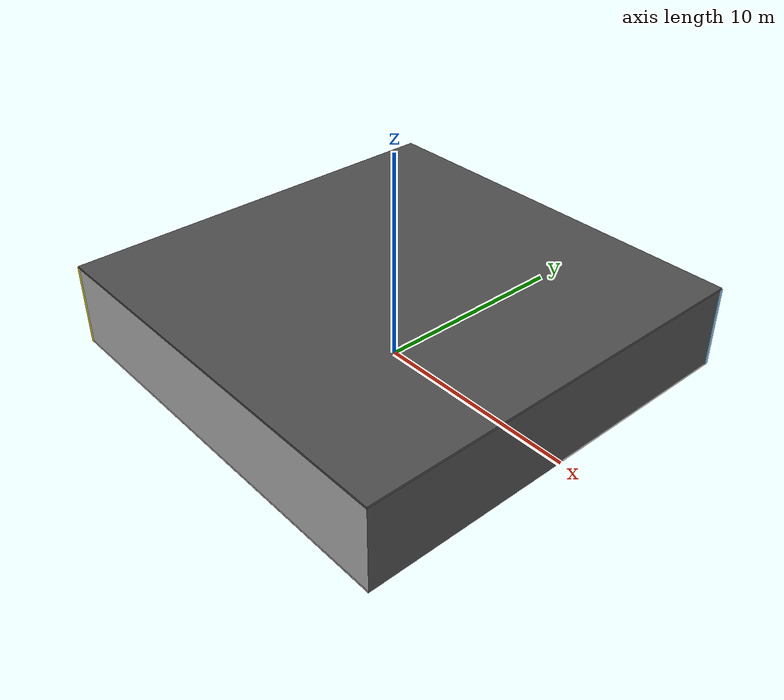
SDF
<sdf version="1.4">
 <world name="default">
  <physics type="ode">
   <max_step_size>0.001</max_step_size>
   <real_time_factor>1</real_time_factor>
   <real_time_update_rate>1000</real_time_update_rate>
   <gravity>0 0 -9.8</gravity>
  </physics>
  <scene><ambient>0.4 0.4 0.4 1</ambient><background>0.7 0.7 0.7 1</background><shadows>1</shadows></scene>
  <model name="Surrounding">
   <static>1</static>
   <link name="Ceiling">
    <collision name="Ceiling_Collision"><geometry><box><size>20 20 0.1</size></box></geometry></collision>
    <visual name="Ceiling_Visual">
     <geometry><box><size>20 20 0.1</size></box></geometry>
     <material>
      <script><uri>file://media/materials/scripts/gazebo.material</uri><name>Gazebo/DarkGrey</name></script>
     </material>
    </visual>
    <pose>0 0 4.05 0 0 0</pose>
   </link>
   <link name="Wall_South">
    <collision name="Wall_South_Collision">
     <geometry><box><size>20 0 4</size></box></geometry>
     <pose>0 0 2 0 -0 0</pose>
    </collision>
    <visual name="Wall_South_Visual">
     <pose>0 0 2 0 -0 0</pose>
     <geometry><box><size>20 0 4</size></box></geometry>
     <material>
      <script><uri>file://media/materials/scripts/gazebo.material</uri><name>Gazebo/LightOn</name></script>
     </material>
    </visual>
    <velocity_decay><linear>0</linear><angular>0</angular></velocity_decay>
    <pose>0 -10 0 0 -0 0</pose>
   </link>
   <link name="Wall_East">
    <collision name="Wall_21_Collision">
     <geometry><box><size>20 0 4</size></box></geometry>
     <pose>0 0 2 0 -0 0</pose>
    </collision>
    <visual name="Wall_21_Visual">
     <pose>0 0 2 0 -0 0</pose>
     <geometry><box><size>20 0 4</size></box></geometry>
     <material>
      <script><uri>file://media/materials/scripts/gazebo.material</uri><name>Gazebo/DarkGrey</name></script>
     </material>
    </visual>
    <velocity_decay><linear>0</linear><angular>0</angular></velocity_decay>
    <pose>10 0 0 0 -0 1.5708</pose>
   </link>
   <link name="Wall_North">
    <collision name="Wall_22_Collision">
     <geometry><box><size>20 0.2 4</size></box></geometry>
     <pose>0 0 2 0 -0 0</pose>
    </collision>
    <visual name="Wall_22_Visual">
     <pose>0 0 2 0 -0 0</pose>
     <geometry><box><size>20 0.2 4</size></box></geometry>
     <material>
      <script><uri>file://media/materials/scripts/gazebo.material</uri><name>Gazebo/SkyBlue</name></script>
     </material>
    </visual>
    <velocity_decay><linear>0</linear><angular>0</angular></velocity_decay>
    <pose>0 10 0 0 -0 0</pose>
   </link>
   <link name="Wall_West">
    <collision name="Wall_23_Collision">
     <geometry><box><size>20 0.2 4</size></box></geometry>
     <pose>0 0 2 0 -0 0</pose>
    </collision>
    <visual name="Wall_23_Visual">
     <pose>0 0 2 0 -0 0</pose>
     <geometry><box><size>20 0.2 4</size></box></geometry>
     <material>
      <script><uri>file://media/materials/scripts/gazebo.material</uri><name>Gazebo/YellowGlow</name></script>
     </material>
    </visual>
    <velocity_decay><linear>0</linear><angular>0</angular></velocity_decay>
    <pose>-10 0 0 0 0 -1.5708</pose>
   </link>
   <link name="Ground_link">
    <collision name="collision">
     <pose>0 0 .05 0 -0 0</pose>
     <geometry><box><size>20 20 0.1</size></box></geometry>
    </collision>
    <visual name="visual">
     <pose>0 0 .05 0 -0 0</pose>
     <geometry><box><size>20 20 0.1</size></box></geometry>
     <material>
      <script><uri>file://media/materials/scripts/gazebo.material</uri><name>Gazebo/CeilingTiled</name></script>
     </material>
    </visual>
   </link>
   <static>1</static>
  </model>
  <spherical_coordinates>
   <surface_model>EARTH_WGS84</surface_model>
   <latitude_deg>0</latitude_deg>
   <longitude_deg>0</longitude_deg>
   <elevation>0</elevation>
   <heading_deg>0</heading_deg>
  </spherical_coordinates>
  <light name="lightball_0" type="diffuse">
   <diffuse>0.8 0.8 0.8 1</diffuse>
   <specular>0.2 0.2 0.2 1</specular>
   <attenuation>
    <range>100</range>
    <constant>0.7</constant>
    <linear>0.01</linear>
    <quadratic>0.001</quadratic>
   </attenuation>
   <direction>-0.5 0.1 -0.9</direction>
   <pose>-2.60769463898 -9.64511510237 0.700158385113 0 0 0</pose>
  </light>
  <light name="lightball_1" type="diffuse">
   <diffuse>0.8 0.8 0.8 1</diffuse>
   <specular>0.2 0.2 0.2 1</specular>
   <attenuation>
    <range>100</range>
    <constant>0.7</constant>
    <linear>0.01</linear>
    <quadratic>0.001</quadratic>
   </attenuation>
   <direction>-0.5 0.1 -0.9</direction>
   <pose>-9.6182779764 3.36690488164 2.84808362546 0 0 0</pose>
  </light>
  <light name="lightball_2" type="diffuse">
   <diffuse>0.8 0.8 0.8 1</diffuse>
   <specular>0.2 0.2 0.2 1</specular>
   <attenuation>
    <range>100</range>
    <constant>0.7</constant>
    <linear>0.01</linear>
    <quadratic>0.001</quadratic>
   </attenuation>
   <direction>-0.5 0.1 -0.9</direction>
   <pose>-3.57571259978 -8.70105712509 2.69763519905 0 0 0</pose>
  </light>
  <light name="lightball_3" type="diffuse">
   <diffuse>0.8 0.8 0.8 1</diffuse>
   <specular>0.2 0.2 0.2 1</specular>
   <attenuation>
    <range>100</range>
    <constant>0.7</constant>
    <linear>0.01</linear>
    <quadratic>0.001</quadratic>
   </attenuation>
   <direction>-0.5 0.1 -0.9</direction>
   <pose>3.73933865183 5.46022493635 2.85002330605 0 0 0</pose>
  </light>
  <light name="lightball_4" type="diffuse">
   <diffuse>0.8 0.8 0.8 1</diffuse>
   <specular>0.2 0.2 0.2 1</specular>
   <attenuation>
    <range>100</range>
    <constant>0.7</constant>
    <linear>0.01</linear>
    <quadratic>0.001</quadratic>
   </attenuation>
   <direction>-0.5 0.1 -0.9</direction>
   <pose>-6.2343357827 4.05724083347 0.937889483803 0 0 0</pose>
  </light>
  <light name="lightball_5" type="diffuse">
   <diffuse>0.8 0.8 0.8 1</diffuse>
   <specular>0.2 0.2 0.2 1</specular>
   <attenuation>
    <range>100</range>
    <constant>0.7</constant>
    <linear>0.01</linear>
    <quadratic>0.001</quadratic>
   </attenuation>
   <direction>-0.5 0.1 -0.9</direction>
   <pose>5.88467293127 -2.55452646833 2.02673118454 0 0 0</pose>
  </light>
  <light name="lightball_6" type="diffuse">
   <diffuse>0.8 0.8 0.8 1</diffuse>
   <specular>0.2 0.2 0.2 1</specular>
   <attenuation>
    <range>100</range>
    <constant>0.7</constant>
    <linear>0.01</linear>
    <quadratic>0.001</quadratic>
   </attenuation>
   <direction>-0.5 0.1 -0.9</direction>
   <pose>8.86575882131 -4.43083515924 2.62839500231 0 0 0</pose>
  </light>
  <light name="lightball_7" type="diffuse">
   <diffuse>0.8 0.8 0.8 1</diffuse>
   <specular>0.2 0.2 0.2 1</specular>
   <attenuation>
    <range>100</range>
    <constant>0.7</constant>
    <linear>0.01</linear>
    <quadratic>0.001</quadratic>
   </attenuation>
   <direction>-0.5 0.1 -0.9</direction>
   <pose>-4.60653142273 -8.09288346201 3.14403303363 0 0 0</pose>
  </light>
  <light name="lightball_8" type="diffuse">
   <diffuse>0.8 0.8 0.8 1</diffuse>
   <specular>0.2 0.2 0.2 1</specular>
   <attenuation>
    <range>100</range>
    <constant>0.7</constant>
    <linear>0.01</linear>
    <quadratic>0.001</quadratic>
   </attenuation>
   <direction>-0.5 0.1 -0.9</direction>
   <pose>-2.4558263649 9.40055569852 1.44984207827 0 0 0</pose>
  </light>
  <include>
   <uri>model://robocup_3Dsim_goal</uri>
   <pose>-4.19836738223 -0.613652742411 0 0 0 2.95631674794</pose>
  </include>
  <include>
   <uri>model://robocup_3Dsim_goal</uri>
   <pose>-5.34098508649 6.42515978481 0 0 0 2.84814759425</pose>
  </include>
  <include><uri>model://cabinet</uri><pose>-1.32621225562 4.6042621196 0 0 0 1.06282293476</pose></include>
  <include>
   <uri>model://textured_shapes</uri>
   <pose>-1.67333068174 7.74989403773 0 0 0 1.40968099939</pose>
  </include>
  <include><uri>model://cabinet</uri><pose>0.507633289485 -1.91370940281 0 0 0 2.32370030211</pose></include>
  <include><uri>model://cabinet</uri><pose>5.60133863505 -1.23115397666 0 0 0 0.352218913669</pose></include>
  <include><uri>model://cabinet</uri><pose>4.929390699 0.851987262298 0 0 0 0.777464162842</pose></include>
 </world>
</sdf>

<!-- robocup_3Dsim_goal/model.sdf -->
<sdf version="1.5">
  <model name="robocup_3d_goal">
    <static>true</static>
    <link name="left_post">
      <pose>0 1.05 0.45 0 0 0</pose>
      <collision name="collision">
        <geometry>
          <cylinder>
            <radius>0.05</radius>
            <length>0.9</length>
          </cylinder>
        </geometry>
      </collision>
      <visual name="visual">
        <geometry>
          <cylinder>
            <radius>0.05</radius>
            <length>0.9</length>
          </cylinder>
        </geometry>
        <material>
          <script>
            <uri>file://media/materials/scripts/gazebo.material</uri>
            <name>Gazebo/ZincYellow</name>
          </script>
        </material>
      </visual>
    </link>
    <link name="left_support_horiz_lower">
      <pose>0.30 1.05 0.01 0 0 0</pose>
      <collision name="collision">
        <geometry>
          <box>
            <size>0.50 0.02 0.02</size>
          </box>
        </geometry>
      </collision>
      <visual name="visual">
        <geometry>
          <box>
            <size>0.50 0.02 0.02</size>
          </box>
        </geometry>
        <material>
          <script>
            <uri>file://media/materials/scripts/gazebo.material</uri>
            <name>Gazebo/White</name>
          </script>
        </material>
      </visual>
    </link>
    <link name="left_support_horiz_upper">
      <pose>0.30 1.05 0.79 0 0 0</pose>
      <collision name="collision">
        <geometry>
          <box>
            <size>0.50 0.02 0.02</size>
          </box>
        </geometry>
      </collision>
      <visual name="visual">
        <geometry>
          <box>
            <size>0.50 0.02 0.02</size>
          </box>
        </geometry>
        <material>
          <script>
            <uri>file://media/materials/scripts/gazebo.material</uri>
            <name>Gazebo/White</name>
          </script>
        </material>
      </visual>
    </link>
    <link name="left_support_vertical">
      <pose>0.56 1.05 0.4 0 1.5708 0</pose>
      <collision name="collision">
        <geometry>
          <box>
            <size>0.80 0.02 0.02</size>
          </box>
        </geometry>
      </collision>
      <visual name="visual">
        <geometry>
          <box>
            <size>0.80 0.02 0.02</size>
          </box>
        </geometry>
        <material>
          <script>
            <uri>file://media/materials/scripts/gazebo.material</uri>
            <name>Gazebo/White</name>
          </script>
        </material>
      </visual>
    </link>
    <link name="right_support_horiz_lower">
      <pose>0.30 -1.05 0.01 0 0 0</pose>
      <collision name="collision">
        <geometry>
          <box>
            <size>0.50 0.02 0.02</size>
          </box>
        </geometry>
      </collision>
      <visual name="visual">
        <geometry>
          <box>
            <size>0.50 0.02 0.02</size>
          </box>
        </geometry>
        <material>
          <script>
            <uri>file://media/materials/scripts/gazebo.material</uri>
            <name>Gazebo/White</name>
          </script>
        </material>
      </visual>
    </link>
    <link name="right_support_horiz_upper">
      <pose>0.30 -1.05 0.79 0 0 0</pose>
      <collision name="collision">
        <geometry>
          <box>
            <size>0.50 0.02 0.02</size>
          </box>
        </geometry>
      </collision>
      <visual name="visual">
        <geometry>
          <box>
            <size>0.50 0.02 0.02</size>
          </box>
        </geometry>
        <material>
          <script>
            <uri>file://media/materials/scripts/gazebo.material</uri>
            <name>Gazebo/White</name>
          </script>
        </material>
      </visual>
    </link>
    <link name="right_support_vertical">
      <pose>0.56 -1.05 0.4 0 1.5708 0</pose>
      <collision name="collision">
        <geometry>
          <box>
            <size>0.80 0.02 0.02</size>
          </box>
        </geometry>
      </collision>
      <visual name="visual">
        <geometry>
          <box>
            <size>0.80 0.02 0.02</size>
          </box>
        </geometry>
        <material>
          <script>
            <uri>file://media/materials/scripts/gazebo.material</uri>
            <name>Gazebo/White</name>
          </script>
        </material>
      </visual>
    </link>
    <link name="center_support_horiz_lower">
      <pose>0.56 0 0.01 0 1.5708 0</pose>
      <collision name="collision">
        <geometry>
          <box>
            <size>0.02 2.08 0.02</size>
          </box>
        </geometry>
      </collision>
      <visual name="visual">
        <geometry>
          <box>
            <size>0.02 2.08 0.02</size>
          </box>
        </geometry>
        <material>
          <script>
            <uri>file://media/materials/scripts/gazebo.material</uri>
            <name>Gazebo/White</name>
          </script>
        </material>
      </visual>
    </link>
    <link name="center_support_horiz_upper">
      <pose>0.56 0 0.79 0 1.5708 0</pose>
      <collision name="collision">
        <geometry>
          <box>
            <size>0.02 2.08 0.02</size>
          </box>
        </geometry>
      </collision>
      <visual name="visual">
        <geometry>
          <box>
            <size>0.02 2.08 0.02</size>
          </box>
        </geometry>
        <material>
          <script>
            <uri>file://media/materials/scripts/gazebo.material</uri>
            <name>Gazebo/White</name>
          </script>
        </material>
      </visual>
    </link>
    <link name="right_post">
      <pose>0 -1.05 0.45 0 0 0</pose>
      <collision name="collision">
        <geometry>
          <cylinder>
            <radius>0.05</radius>
            <length>0.9</length>
          </cylinder>
        </geometry>
      </collision>
      <visual name="visual">
        <geometry>
          <cylinder>
            <radius>0.05</radius>
            <length>0.9</length>
          </cylinder>
        </geometry>
        <material>
          <script>
            <uri>file://media/materials/scripts/gazebo.material</uri>
            <name>Gazebo/ZincYellow</name>
          </script>
        </material>
      </visual>
    </link>
    <link name="crossbar">
      <pose>0 0 0.85 1.57 1.57 0</pose>
      <collision name="collision">
        <geometry>
          <cylinder>
            <radius>0.05</radius>
            <length>2.0</length>
          </cylinder>
        </geometry>
      </collision>
      <visual name="visual">
        <geometry>
          <cylinder>
            <radius>0.05</radius>
            <length>2.0</length>
          </cylinder>
        </geometry>
        <material>
          <script>
            <uri>file://media/materials/scripts/gazebo.material</uri>
            <name>Gazebo/ZincYellow</name>
          </script>
        </material>
      </visual>
    </link>
    <link name="center_net">
      <pose>0.56 0 0.40 0 0 0</pose>
      <collision name="collision">
        <geometry>
          <box>
            <size>0.01 2.1 0.80</size>
          </box>
        </geometry>
      </collision>
      <visual name="visual">
        <geometry>
          <box>
            <size>0.01 2.1 0.80</size>
          </box>
        </geometry>
        <material>
          <script>
            <uri>model://../model_source/models/robocup09_spl_field/materials/scripts/</uri>
            <uri>model://../model_source/models/robocup09_spl_field/materials/textures/</uri>
            <name>RoboCup/Net</name>
          </script>
        </material>
      </visual>
    </link>
    <link name="left_net">
      <pose>0.30 1.05 0.40 0 0 0</pose>
      <collision name="collision">
        <geometry>
          <box>
            <size>0.50 0.01 0.76</size>
          </box>
        </geometry>
      </collision>
      <visual name="visual">
        <geometry>
          <box>
            <size>0.50 0.01 0.76</size>
          </box>
        </geometry>
        <material>
          <script>
            <uri>model://../model_source/models/robocup09_spl_field/materials/scripts/</uri>
            <uri>model://../model_source/models/robocup09_spl_field/materials/textures/</uri>
            <name>RoboCup/Net</name>
          </script>
        </material>
      </visual>
    </link>
    <link name="right_net">
      <pose>0.30 -1.05 0.40 0 0 0</pose>
      <collision name="collision">
        <geometry>
          <box>
            <size>0.50 0.01 0.76</size>
          </box>
        </geometry>
      </collision>
      <visual name="visual">
        <geometry>
          <box>
            <size>0.50 0.01 0.76</size>
          </box>
        </geometry>
        <material>
          <script>
            <uri>model://../model_source/models/robocup09_spl_field/materials/scripts/</uri>
            <uri>model://../model_source/models/robocup09_spl_field/materials/textures/</uri>
            <name>RoboCup/Net</name>
          </script>
        </material>
      </visual>
    </link>
  </model>
</sdf>

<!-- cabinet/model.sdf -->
<sdf version="1.5">
  <model name="cabinet">
    <static>true</static>
    <link name="cabinet_bottom_plate">
      <inertial>
        <pose>0 0 -1 0 0 0</pose>
        <inertia>
          <ixx>2.050000</ixx>
          <ixy>0</ixy>
          <ixz>0</ixz>
          <iyy>2.050000</iyy>
          <iyz>0</iyz>
          <izz>2.050000</izz>
        </inertia>
        <mass>25.000000</mass>
      </inertial>
      <collision name="cabinet_bottom_plate_geom">
        <pose>0 0 0.010000 0 0 0</pose>
        <geometry>
          <box>
            <size>0.450000 0.450000 0.020000</size>
          </box>
        </geometry>
      </collision>
      <visual name="cabinet_bottom_plate_geom_visual">
        <pose>0 0 0.010000 0 0 0</pose>
        <geometry>
          <box>
            <size>0.450000 0.450000 0.020000</size>
          </box>
        </geometry>
        <material>
          <script>
            <uri>model://media/materials/scripts/gazebo.material</uri>
            <name>Gazebo/Wood</name>
          </script>
        </material>
      </visual>
      <collision name="cabinet_bottom_plate_geom_cabinet_back_plate">
        <pose>0.235000 0 0.510000 0 0 0</pose>
        <geometry>
          <box>
            <size>0.020000 0.450000 1.020000</size>
          </box>
        </geometry>
      </collision>
      <visual name="cabinet_bottom_plate_geom_cabinet_back_plate_visual">
        <pose>0.235000 0 0.510000 0 0 0</pose>
        <geometry>
          <box>
            <size>0.020000 0.450000 1.020000</size>
          </box>
        </geometry>
        <material>
          <script>
            <uri>model://media/materials/scripts/gazebo.material</uri>
            <name>Gazebo/Wood</name>
          </script>
        </material>
      </visual>
      <collision name="cabinet_bottom_plate_geom_cabinet_left_plate">
        <pose>0 0.235000 0.510000 0 0 0</pose>
        <geometry>
          <box>
            <size>0.450000 0.020000 1.020000</size>
          </box>
        </geometry>
      </collision>
      <visual name="cabinet_bottom_plate_geom_cabinet_left_plate_visual">
        <pose>0 0.235000 0.510000 0 0 0</pose>
        <geometry>
          <box>
            <size>0.450000 0.020000 1.020000</size>
          </box>
        </geometry>
        <material>
          <script>
            <uri>model://media/materials/scripts/gazebo.material</uri>
            <name>Gazebo/Wood</name>
          </script>
        </material>
      </visual>
      <collision name="cabinet_bottom_plate_geom_cabinet_middle_plate">
        <pose>0 0 0.510000 0 0 0</pose>
        <geometry>
          <box>
            <size>0.450000 0.450000 0.020000</size>
          </box>
        </geometry>
      </collision>
      <visual name="cabinet_bottom_plate_geom_cabinet_middle_plate_visual">
        <pose>0 0 0.510000 0 0 0</pose>
        <geometry>
          <box>
            <size>0.450000 0.450000 0.020000</size>
          </box>
        </geometry>
        <material>
          <script>
            <uri>model://media/materials/scripts/gazebo.material</uri>
            <name>Gazebo/Wood</name>
          </script>
        </material>
      </visual>
      <collision name="cabinet_bottom_plate_geom_cabinet_right_plate">
        <pose>0 -0.235000 0.510000 0 0 0</pose>
        <geometry>
          <box>
            <size>0.450000 0.020000 1.020000</size>
          </box>
        </geometry>
      </collision>
      <visual name="cabinet_bottom_plate_geom_cabinet_right_plate_visual">
        <pose>0 -0.235000 0.510000 0 0 0</pose>
        <geometry>
          <box>
            <size>0.450000 0.020000 1.020000</size>
          </box>
        </geometry>
        <material>
          <script>
            <uri>model://media/materials/scripts/gazebo.material</uri>
            <name>Gazebo/Wood</name>
          </script>
        </material>
      </visual>
      <collision name="cabinet_bottom_plate_geom_cabinet_top_plate">
        <pose>0 0 1.010000 0 0 0</pose>
        <geometry>
          <box>
            <size>0.450000 0.450000 0.020000</size>
          </box>
        </geometry>
      </collision>
      <visual name="cabinet_bottom_plate_geom_cabinet_top_plate_visual">
        <pose>0 0 1.010000 0 0 0</pose>
        <geometry>
          <box>
            <size>0.450000 0.450000 0.020000</size>
          </box>
        </geometry>
        <material>
          <script>
            <uri>model://media/materials/scripts/gazebo.material</uri>
            <name>Gazebo/Wood</name>
          </script>
        </material>
      </visual>
    </link>
  </model>
</sdf>

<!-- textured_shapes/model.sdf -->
<sdf version="1.6">
  <model name="textured_shapes">
    <pose>0 0 0.5 0 0 0</pose>
    <link name="box">
      <pose>0 -1.5 0 0 0 0</pose>
      <collision name="collision">
        <geometry>
          <box>
            <size>1 1 1</size>
          </box>
        </geometry>
      </collision>
      <visual name="visual">
        <geometry>
          <box>
            <size>1 1 1</size>
          </box>
        </geometry>
        <material>
          <script>
            <uri>model://../model_source/models/textured_shapes/materials/scripts</uri>
            <uri>model://../model_source/models/textured_shapes/materials/textures</uri>
            <name>TexturedShape/Squares</name>
          </script>
        </material>
      </visual>
    </link>
    <link name="sphere">
      <collision name="collision">
        <geometry>
          <sphere>
            <radius>0.5</radius>
          </sphere>
        </geometry>
      </collision>
      <visual name="visual">
        <geometry>
          <sphere>
            <radius>0.5</radius>
          </sphere>
        </geometry>
        <material>
          <script>
            <uri>model://../model_source/models/textured_shapes/materials/scripts</uri>
            <uri>model://../model_source/models/textured_shapes/materials/textures</uri>
            <name>TexturedShape/Squares</name>
          </script>
        </material>
      </visual>
    </link>
    <link name="cylinder">
      <pose>0 1.5 0 0 0 0</pose>
      <collision name="collision">
        <geometry>
          <cylinder>
            <radius>0.5</radius>
            <length>1</length>
          </cylinder>
        </geometry>
      </collision>
      <visual name="visual">
        <geometry>
          <cylinder>
            <radius>0.5</radius>
            <length>1</length>
          </cylinder>
        </geometry>
        <material>
          <script>
            <uri>model://../model_source/models/textured_shapes/materials/scripts</uri>
            <uri>model://../model_source/models/textured_shapes/materials/textures</uri>
            <name>TexturedShape/Squares</name>
          </script>
        </material>
      </visual>
    </link>
  </model>
</sdf>
